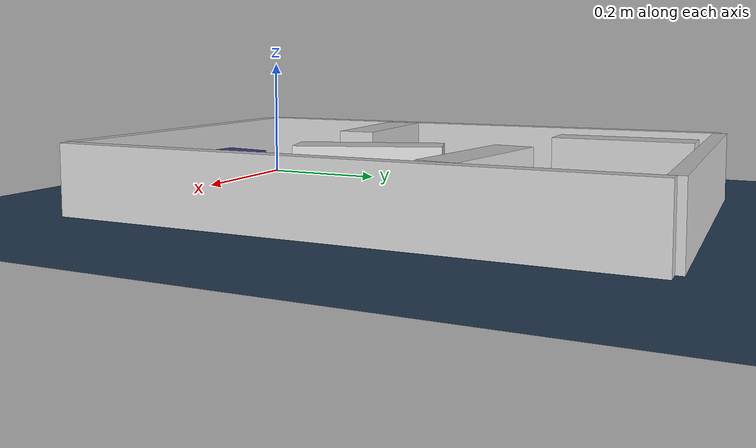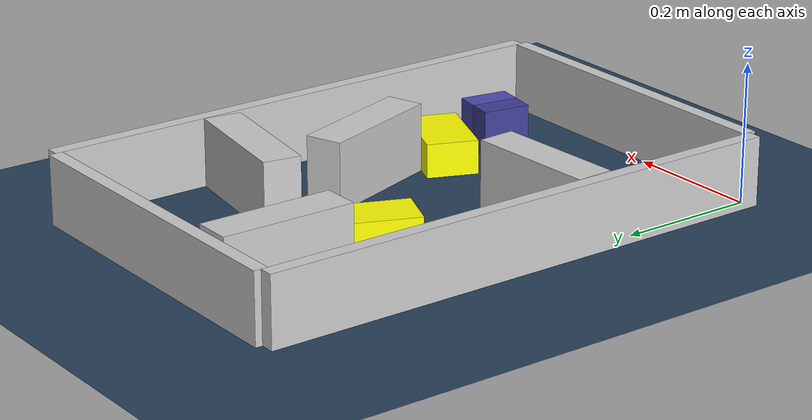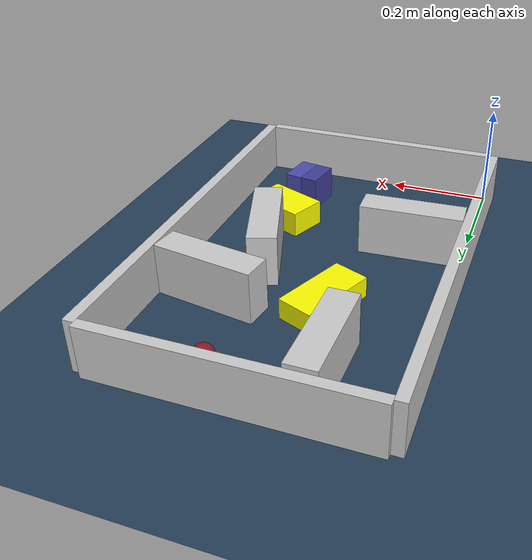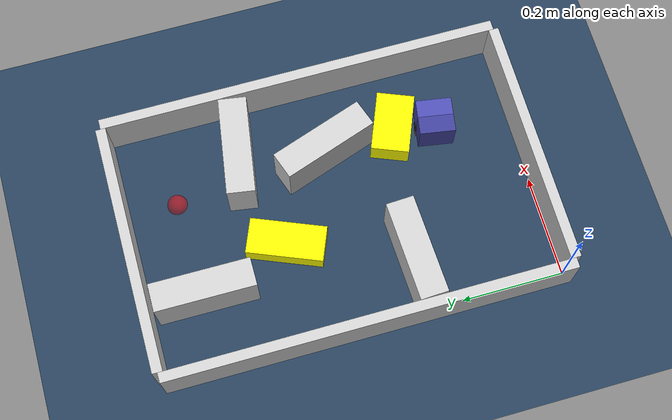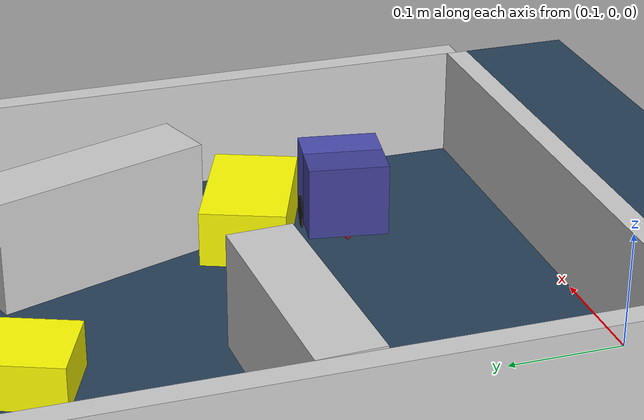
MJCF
<?xml version='1.0' encoding='utf-8'?>
<mujoco model="real_buildable">
  <compiler angle="degree" />
  <option timestep="0.002" integrator="implicitfast" iterations="100" cone="elliptic" />
  <default>
    <geom density="1" />
  </default>
  <asset>
    <texture builtin="gradient" height="3072" rgb1="0.3 0.5 0.7" rgb2="0 0 0" type="skybox" width="512" />
    <texture builtin="checker" height="300" mark="edge" markrgb="0.8 0.8 0.8" name="groundplane" rgb1="0.2 0.3 0.4" rgb2="0.1 0.2 0.3" type="2d" width="300" />
    <material name="groundplane" reflectance="0.2" texrepeat="5 5" texture="groundplane" texuniform="true" />
  </asset>
  <worldbody>
    <light dir="0 0 -1" directional="true" pos="0 0 1.5" />
    <geom name="floor" type="plane" condim="4" friction="0.5 0.005 0.001" material="groundplane" size="0 0 0.05" />
    <body name="walls">
      <geom name="wall_boundary_left" type="box" condim="4" friction="1.0 0.005 0.0001" rgba="0.8 0.8 0.8 1" pos="-0.010000 0.387500 0.050000" euler="0 0 0.000000" size="0.010000 0.397500 0.050000" />
      <geom name="wall_boundary_right" type="box" condim="4" friction="1.0 0.005 0.0001" rgba="0.8 0.8 0.8 1" pos="0.500000 0.387500 0.050000" euler="0 0 0.000000" size="0.010000 0.397500 0.050000" />
      <geom name="wall_boundary_bottom" type="box" condim="4" friction="1.0 0.005 0.0001" rgba="0.8 0.8 0.8 1" pos="0.245000 -0.010000 0.050000" euler="0 0 0.000000" size="0.245000 0.010000 0.050000" />
      <geom name="wall_boundary_top" type="box" condim="4" friction="1.0 0.005 0.0001" rgba="0.8 0.8 0.8 1" pos="0.245000 0.785000 0.050000" euler="0 0 0.000000" size="0.245000 0.010000 0.050000" />
      <geom name="wall_inner_1" type="box" condim="4" friction="1.0 0.005 0.0001" rgba="0.8 0.8 0.8 1" pos="0.099000 0.268000 0.050000" euler="0 0 2.700000" size="0.097500 0.027500 0.050000" />
      <geom name="wall_inner_2" type="box" condim="4" friction="1.0 0.005 0.0001" rgba="0.8 0.8 0.8 1" pos="0.355000 0.377000 0.050000" euler="0 0 109.000000" size="0.097500 0.027500 0.050000" />
      <geom name="wall_inner_3" type="box" condim="4" friction="1.0 0.005 0.0001" rgba="0.8 0.8 0.8 1" pos="0.389000 0.541000 0.050000" euler="0 0 171.000000" size="0.097500 0.027500 0.050000" />
      <geom name="wall_inner_4" type="box" condim="4" friction="1.0 0.005 0.0001" rgba="0.8 0.8 0.8 1" pos="0.137000 0.669000 0.050000" euler="0 0 89.700000" size="0.097500 0.027500 0.050000" />
    </body>
    <body name="car" pos="0.35077424575360505 0.15179006452586583 0.01" quat="0.99672947393806866 0 0 -0.080810616772432051">
      <freejoint name="car_freejoint" />
      <inertial pos="0 0 0.0375" mass="0.35" diaginertia="0.000266 0.000266 0.000286" />
      <geom name="front_chassis_collision" type="box" pos="0.0175 0 0.0375" size="0.0175 0.035 0.0325" rgba="0.3 0.3 0.7 1" />
      <geom name="rear_chassis_collision" type="box" pos="-0.0175 0 0.0375" size="0.0175 0.035 0.0325" rgba="0.25 0.25 0.6 1" />
      <geom name="front_marker" type="box" pos="0.034 0 0.0505" size="0.002 0.015 0.01" rgba="1 0.2 0.2 1" contype="0" conaffinity="0" />
      <body name="rear_support_body" pos="-0.03 0 0.0025">
        <joint name="rear_caster_joint" type="ball" damping="0.0001" />
        <inertial pos="0 0 0" mass="0.025" diaginertia="0.000001 0.000001 0.000001" />
        <geom name="rear_support" type="sphere" pos="0 0 0" size="0.0025" friction="0 0 0" rgba="0.7 0.1 0.1 1" />
      </body>
      <body name="front_support_body" pos="0.03 0 0.0025">
        <joint name="front_caster_joint" type="ball" damping="0.0001" />
        <inertial pos="0 0 0" mass="0.025" diaginertia="0.000001 0.000001 0.000001" />
        <geom name="front_support" type="sphere" pos="0 0 0" size="0.0025" friction="0 0 0" rgba="0.1 0.7 0.1 1" />
      </body>
      <body name="left_wheel" pos="0 0.0375 0.015">
        <inertial pos="0 0 0" mass="0.05" diaginertia="0.000003 0.000006 0.000003" />
        <joint name="left_wheel_joint" type="hinge" axis="0 1 0" damping="0.01" armature="0.0001" />
        <geom name="left_wheel_collision" type="cylinder" size="0.015 0.0005" euler="90 0 0" rgba="0.1 0.1 0.1 1" />
      </body>
      <body name="right_wheel" pos="0 -0.0375 0.015">
        <inertial pos="0 0 0" mass="0.05" diaginertia="0.000003 0.000006 0.000003" />
        <joint name="right_wheel_joint" type="hinge" axis="0 1 0" damping="0.01" armature="0.0001" />
        <geom name="right_wheel_collision" type="cylinder" size="0.015 0.0005" euler="90 0 0" rgba="0.1 0.1 0.1 1" />
      </body>
    </body>
    <body name="obstacle_0_movable">
      <geom name="obstacle_0_movable" condim="4" pos="0.37237912193301559 0.23069991726961647 0.025000000000000001" friction="1 0.005 0.0001" rgba="1 1 0 1" size="0.037500 0.060000 0.025000" type="box" mass="0.1" quat="0.82921607038810097 0 0 0.55892817840051334" />
      <joint type="free" />
    </body>
    <body name="obstacle_1_movable">
      <geom name="obstacle_1_movable" condim="4" pos="0.19799999999999995 0.49500000000000016 0.02" friction="1 0.005 0.0001" rgba="1 1 0 1" size="0.035000 0.075000 0.020000" type="box" mass="0.1" quat="0.98095515534919153 0 0 -0.19423435121997196" />
      <joint type="free" />
    </body>
    <site name="goal" type="sphere" pos="0.337000 0.681000 0.0" size="0.02" rgba="1 0 0 0.5" />
  </worldbody>
  <actuator>
    <velocity name="left_wheel_drive" joint="left_wheel_joint" ctrlrange="-25 25" kv="0.75" forcerange="-0.5 0.5" />
    <velocity name="right_wheel_drive" joint="right_wheel_joint" ctrlrange="-25 25" kv="0.75" forcerange="-0.5 0.5" />
  </actuator>
</mujoco>
